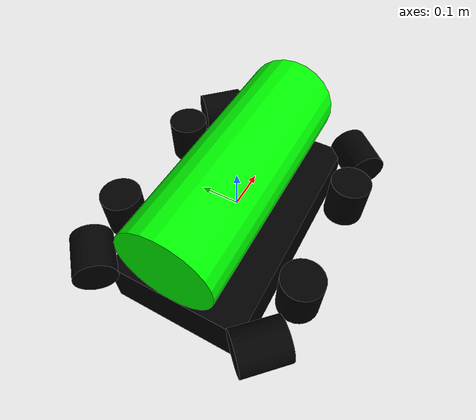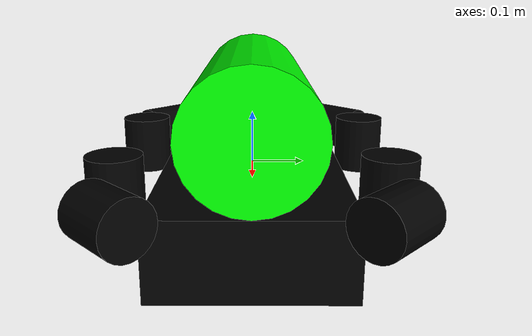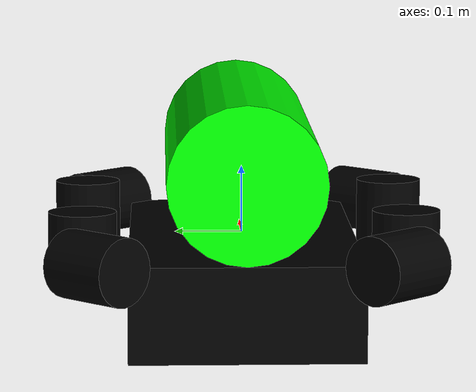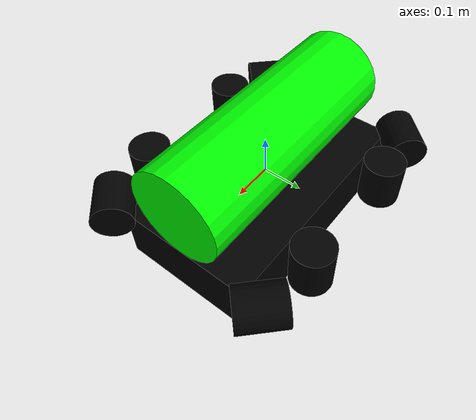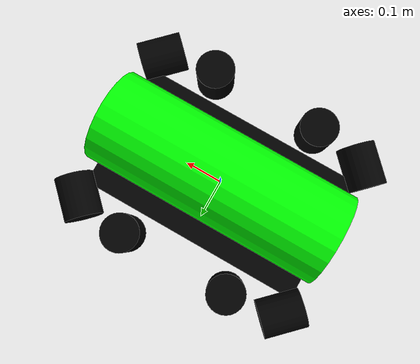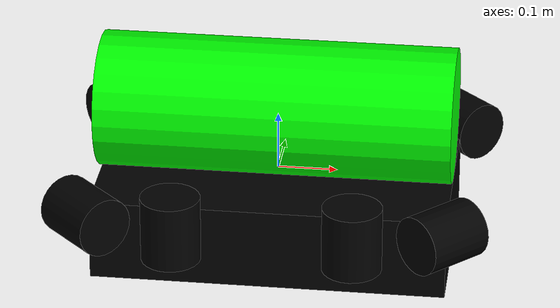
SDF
<?xml version="1.0"?>
<sdf version="1.8">
  <model name="orca_auv">

    <link name="main_body">

      <inertial>
        <mass>20</mass>
        <inertia>
          <ixx>0.2</ixx>
          <ixy>0</ixy>
          <ixz>0</ixz>
          <iyy>0.5</iyy>
          <iyz>0</iyz>
          <izz>0.5</izz>
        </inertia>
      </inertial>

      <collision name="main_body_buoyancy">

        <pose>0 0 0.115 0 0 0</pose>

        <geometry>
          <box>
            <size>0.6 0.200 0.200</size>
          </box>
        </geometry>

      </collision>

      <visual name="main_hull_visual">

        <pose>0 0 0.115 0 1.5707963268 0</pose>

        <geometry>
          <cylinder>
            <radius>0.115</radius>
            <length>0.6</length>
          </cylinder>
        </geometry>

        <material>
          <ambient>0.0 1.0 0.0 1.0</ambient>
          <diffuse>0.0 1.0 0.0 1.0</diffuse>
          <specular>0.25 0.25 0.25 1.0</specular>
        </material>

      </visual>

      <visual name="main_frame_visual">

        <pose>0 0 -0.070 0 0 0</pose>

        <geometry>
          <box>
            <size>0.6 0.340 0.140</size>
          </box>
        </geometry>

        <material>
          <ambient>0.0 0.0 0.0 1.0</ambient>
          <diffuse>0.0 0.0 0.0 1.0</diffuse>
          <specular>0.25 0.25 0.25 1.0</specular>
        </material>

      </visual>

      <sensor name="d435i_rgbd" type="rgbd_camera">
        <pose>0.3 0 0.115 0 0 0</pose>
        <topic>orca_auv/realsense</topic>
        <camera>
          <horizontal_fov>1.211</horizontal_fov>
          <image>
            <width>640</width>
            <height>480</height>
            <format>R8G8B8</format>
          </image>
          <depth_camera>
            <output>depths</output>
          </depth_camera>
          <clip>
            <near>0.1</near>
            <far>20</far>
          </clip>
        </camera>
        <always_on>1</always_on>
        <update_rate>30</update_rate>
        <visualize>true</visualize>
      </sensor>

      <!-- Bottom-side camera sensor -->
      <sensor name="bottom_camera" type="camera">
        <pose>0 0 -0.123 0 1.57 0</pose>
        <topic>/orca_auv/camera/bottom/image_raw</topic>
        <camera_info_topic>/orca_auv/camera/bottom/camera_info</camera_info_topic>
        <camera>
          <horizontal_fov>1.047</horizontal_fov>
          <image>
            <width>160</width>
            <height>120</height>
            <format>R8G8B8</format>
          </image>
          <clip>
            <near>0.1</near>
            <far>20</far>
          </clip>
        </camera>
        <always_on>1</always_on>
        <update_rate>15</update_rate>
        <visualize>true</visualize>
      </sensor>

      <sensor name="orca_auv_imu_sensor" type="imu">
        <always_on>true</always_on>
        <update_rate>100</update_rate>
        <visualize>true</visualize>
        <topic>/orca_auv/sensors/imu</topic>
        <pose>0 0 0 3.1415926536 0 0</pose>

        <plugin filename="libignition-gazebo-imu-system.so"
                name="ignition::gazebo::systems::Imu">
        </plugin>
      </sensor>

      <sensor name="orca_auv_altimeter" type="altimeter">
        <always_on>true</always_on>
        <update_rate>100</update_rate>
        <visualize>true</visualize>
        <topic>/orca_auv/sensors/altimeter</topic>
        <pose>0 0.115 0 0 0 1.5707963268</pose>

        <plugin filename="libignition-gazebo-altimeter-system.so"
          name="ignition::gazebo::systems::Altimeter" />

        <altimeter>
          <vertical_position>
            <noise type="gaussian"></noise>
          </vertical_position>
        </altimeter>
      </sensor>

    </link>

    <plugin
      filename="ignition-gazebo-hydrodynamics-system"
      name="ignition::gazebo::systems::Hydrodynamics">
      <link_name>main_body</link_name>

      <xDotU>-1</xDotU>
      <yDotV>-1</yDotV>
      <zDotW>-1</zDotW>

      <kDotP>-0.1</kDotP>
      <mDotQ>-0.1</mDotQ>
      <nDotR>-0.1</nDotR>

      <xUabsU>-1</xUabsU>
      <yVabsV>-1</yVabsV>
      <zWabsW>-1</zWabsW>

      <kPabsP>-1</kPabsP>
      <mQabsQ>-1</mQabsQ>
      <nRabsR>-1</nRabsR>

      <xU>-30</xU>
      <yV>-30</yV>
      <zW>-30</zW>

      <kP>-1</kP>
      <mQ>-1</mQ>
      <nR>-1</nR>
    </plugin>

    <!-- thruster_0 begin -->

    <link name="thruster_0">

      <pose relative_to="main_body">0.150 0.237 0 0 1.5707963268 0</pose>

      <inertial>
        <mass>0.427</mass>
        <inertia>
          <ixx>0.0006</ixx>
          <ixy>0</ixy>
          <ixz>0</ixz>
          <iyy>0.0003</iyy>
          <iyz>0</iyz>
          <izz>0.0003</izz>
        </inertia>
      </inertial>

      <visual name="thruster_0_visual">
        <pose>0 0 0 0 1.5707963268 0</pose>

        <geometry>
          <cylinder>
            <radius>0.050</radius>
            <length>0.113</length>
          </cylinder>
        </geometry>

        <material>
          <ambient>0.0 0.0 0.0 1.0</ambient>
          <diffuse>0.0 0.0 0.0 1.0</diffuse>
          <specular>0.25 0.25 0.25 1.0</specular>
        </material>
      </visual>

    </link>

    <joint name="thruster_0_joint" type="revolute">
      <parent>main_body</parent>
      <child>thruster_0</child>

      <axis>
        <xyz>1 0 0</xyz>
      </axis>
    </joint>

    <plugin
      filename="ignition-gazebo-thruster-system"
      name="ignition::gazebo::systems::Thruster">
      <namespace>orca_auv</namespace>
      <topic>thrusters/thruster_0/force_N</topic>

      <joint_name>thruster_0_joint</joint_name>

      <fluid_density>1000</fluid_density>
      <propeller_diameter>0.076</propeller_diameter>
      <thrust_coefficient>1.0</thrust_coefficient>
    </plugin>

    <!-- thruster_0 end -->

    <!-- thruster_1 begin -->

    <link name="thruster_1">

      <pose relative_to="main_body">0.150 -0.237 0 0 1.5707963268 0</pose>

      <inertial>
        <mass>0.427</mass>
        <inertia>
          <ixx>0.0006</ixx>
          <ixy>0</ixy>
          <ixz>0</ixz>
          <iyy>0.0003</iyy>
          <iyz>0</iyz>
          <izz>0.0003</izz>
        </inertia>
      </inertial>

      <visual name="thruster_1_visual">
        <pose>0 0 0 0 1.5707963268 0</pose>

        <geometry>
          <cylinder>
            <radius>0.050</radius>
            <length>0.113</length>
          </cylinder>
        </geometry>

        <material>
          <ambient>0.0 0.0 0.0 1.0</ambient>
          <diffuse>0.0 0.0 0.0 1.0</diffuse>
          <specular>0.25 0.25 0.25 1.0</specular>
        </material>
      </visual>

    </link>

    <joint name="thruster_1_joint" type="revolute">
      <parent>main_body</parent>
      <child>thruster_1</child>

      <axis>
        <xyz>1 0 0</xyz>
      </axis>
    </joint>

    <plugin
      filename="ignition-gazebo-thruster-system"
      name="ignition::gazebo::systems::Thruster">
      <namespace>orca_auv</namespace>
      <topic>thrusters/thruster_1/force_N</topic>

      <joint_name>thruster_1_joint</joint_name>

      <fluid_density>1000</fluid_density>
      <propeller_diameter>0.076</propeller_diameter>
      <thrust_coefficient>1.0</thrust_coefficient>
    </plugin>

    <!-- thruster_1 end -->

    <!-- thruster_2 begin -->

    <link name="thruster_2">

      <pose relative_to="main_body">-0.150 0.237 0 0 1.5707963268 0</pose>

      <inertial>
        <mass>0.427</mass>
        <inertia>
          <ixx>0.0006</ixx>
          <ixy>0</ixy>
          <ixz>0</ixz>
          <iyy>0.0003</iyy>
          <iyz>0</iyz>
          <izz>0.0003</izz>
        </inertia>
      </inertial>

      <visual name="thruster_2_visual">
        <pose>0 0 0 0 1.5707963268 0</pose>

        <geometry>
          <cylinder>
            <radius>0.050</radius>
            <length>0.113</length>
          </cylinder>
        </geometry>

        <material>
          <ambient>0.0 0.0 0.0 1.0</ambient>
          <diffuse>0.0 0.0 0.0 1.0</diffuse>
          <specular>0.25 0.25 0.25 1.0</specular>
        </material>
      </visual>

    </link>

    <joint name="thruster_2_joint" type="revolute">
      <parent>main_body</parent>
      <child>thruster_2</child>

      <axis>
        <xyz>1 0 0</xyz>
      </axis>
    </joint>

    <plugin
      filename="ignition-gazebo-thruster-system"
      name="ignition::gazebo::systems::Thruster">
      <namespace>orca_auv</namespace>
      <topic>thrusters/thruster_2/force_N</topic>

      <joint_name>thruster_2_joint</joint_name>

      <fluid_density>1000</fluid_density>
      <propeller_diameter>0.076</propeller_diameter>
      <thrust_coefficient>1.0</thrust_coefficient>
    </plugin>

    <!-- thruster_2 end -->

    <!-- thruster_3 begin -->

    <link name="thruster_3">

      <pose relative_to="main_body">-0.150 -0.237 0 0 1.5707963268 0</pose>

      <inertial>
        <mass>0.427</mass>
        <inertia>
          <ixx>0.0006</ixx>
          <ixy>0</ixy>
          <ixz>0</ixz>
          <iyy>0.0003</iyy>
          <iyz>0</iyz>
          <izz>0.0003</izz>
        </inertia>
      </inertial>

      <visual name="thruster_3_visual">
        <pose>0 0 0 0 1.5707963268 0</pose>

        <geometry>
          <cylinder>
            <radius>0.050</radius>
            <length>0.113</length>
          </cylinder>
        </geometry>

        <material>
          <ambient>0.0 0.0 0.0 1.0</ambient>
          <diffuse>0.0 0.0 0.0 1.0</diffuse>
          <specular>0.25 0.25 0.25 1.0</specular>
        </material>
      </visual>

    </link>

    <joint name="thruster_3_joint" type="revolute">
      <parent>main_body</parent>
      <child>thruster_3</child>

      <axis>
        <xyz>1 0 0</xyz>
      </axis>
    </joint>

    <plugin
      filename="ignition-gazebo-thruster-system"
      name="ignition::gazebo::systems::Thruster">
      <namespace>orca_auv</namespace>
      <topic>thrusters/thruster_3/force_N</topic>

      <joint_name>thruster_3_joint</joint_name>

      <fluid_density>1000</fluid_density>
      <propeller_diameter>0.076</propeller_diameter>
      <thrust_coefficient>1.0</thrust_coefficient>
    </plugin>

    <!-- thruster_3 end -->

    <!-- thruster_4 begin -->

    <link name="thruster_4">

      <pose relative_to="main_body">0.29651 0.213 0 0 0 -0.7853981634</pose>

      <inertial>
        <mass>0.427</mass>
        <inertia>
          <ixx>0.0006</ixx>
          <ixy>0</ixy>
          <ixz>0</ixz>
          <iyy>0.0003</iyy>
          <iyz>0</iyz>
          <izz>0.0003</izz>
        </inertia>
      </inertial>

      <visual name="thruster_4_visual">
        <pose>0 0 0 0 1.5707963268 0</pose>

        <geometry>
          <cylinder>
            <radius>0.050</radius>
            <length>0.113</length>
          </cylinder>
        </geometry>

        <material>
          <ambient>0.0 0.0 0.0 1.0</ambient>
          <diffuse>0.0 0.0 0.0 1.0</diffuse>
          <specular>0.25 0.25 0.25 1.0</specular>
        </material>
      </visual>

    </link>

    <joint name="thruster_4_joint" type="revolute">
      <parent>main_body</parent>
      <child>thruster_4</child>

      <axis>
        <xyz>1 0 0</xyz>
      </axis>
    </joint>

    <plugin
      filename="ignition-gazebo-thruster-system"
      name="ignition::gazebo::systems::Thruster">
      <namespace>orca_auv</namespace>
      <topic>thrusters/thruster_4/force_N</topic>

      <joint_name>thruster_4_joint</joint_name>

      <fluid_density>1000</fluid_density>
      <propeller_diameter>0.076</propeller_diameter>
      <thrust_coefficient>1.0</thrust_coefficient>
    </plugin>

    <!-- thruster_4 end -->

    <!-- thruster_5 begin -->

    <link name="thruster_5">

      <pose relative_to="main_body">0.29651 -0.213 0 0 0 0.7853981634</pose>

      <inertial>
        <mass>0.427</mass>
        <inertia>
          <ixx>0.0006</ixx>
          <ixy>0</ixy>
          <ixz>0</ixz>
          <iyy>0.0003</iyy>
          <iyz>0</iyz>
          <izz>0.0003</izz>
        </inertia>
      </inertial>

      <visual name="thruster_5_visual">
        <pose>0 0 0 0 1.5707963268 0</pose>

        <geometry>
          <cylinder>
            <radius>0.050</radius>
            <length>0.113</length>
          </cylinder>
        </geometry>

        <material>
          <ambient>0.0 0.0 0.0 1.0</ambient>
          <diffuse>0.0 0.0 0.0 1.0</diffuse>
          <specular>0.25 0.25 0.25 1.0</specular>
        </material>
      </visual>

    </link>

    <joint name="thruster_5_joint" type="revolute">
      <parent>main_body</parent>
      <child>thruster_5</child>

      <axis>
        <xyz>1 0 0</xyz>
      </axis>
    </joint>

    <plugin
      filename="ignition-gazebo-thruster-system"
      name="ignition::gazebo::systems::Thruster">
      <namespace>orca_auv</namespace>
      <topic>thrusters/thruster_5/force_N</topic>

      <joint_name>thruster_5_joint</joint_name>

      <fluid_density>1000</fluid_density>
      <propeller_diameter>0.076</propeller_diameter>
      <thrust_coefficient>1.0</thrust_coefficient>
    </plugin>

    <!-- thruster_5 end -->

    <!-- thruster_6 begin -->

    <link name="thruster_6">

      <pose relative_to="main_body">-0.29651 0.213 0 0 0 0.7853981634</pose>

      <inertial>
        <mass>0.427</mass>
        <inertia>
          <ixx>0.0006</ixx>
          <ixy>0</ixy>
          <ixz>0</ixz>
          <iyy>0.0003</iyy>
          <iyz>0</iyz>
          <izz>0.0003</izz>
        </inertia>
      </inertial>

      <visual name="thruster_6_visual">
        <pose>0 0 0 0 1.5707963268 0</pose>

        <geometry>
          <cylinder>
            <radius>0.050</radius>
            <length>0.113</length>
          </cylinder>
        </geometry>

        <material>
          <ambient>0.0 0.0 0.0 1.0</ambient>
          <diffuse>0.0 0.0 0.0 1.0</diffuse>
          <specular>0.25 0.25 0.25 1.0</specular>
        </material>
      </visual>

    </link>

    <joint name="thruster_6_joint" type="revolute">
      <parent>main_body</parent>
      <child>thruster_6</child>

      <axis>
        <xyz>1 0 0</xyz>
      </axis>
    </joint>

    <plugin
      filename="ignition-gazebo-thruster-system"
      name="ignition::gazebo::systems::Thruster">
      <namespace>orca_auv</namespace>
      <topic>thrusters/thruster_6/force_N</topic>

      <joint_name>thruster_6_joint</joint_name>

      <fluid_density>1000</fluid_density>
      <propeller_diameter>0.076</propeller_diameter>
      <thrust_coefficient>1.0</thrust_coefficient>
    </plugin>

    <!-- thruster_6 end -->

    <!-- thruster_7 begin -->

    <link name="thruster_7">

      <pose relative_to="main_body">-0.29651 -0.213 0 0 0 -0.7853981634</pose>

      <inertial>
        <mass>0.427</mass>
        <inertia>
          <ixx>0.0006</ixx>
          <ixy>0</ixy>
          <ixz>0</ixz>
          <iyy>0.0003</iyy>
          <iyz>0</iyz>
          <izz>0.0003</izz>
        </inertia>
      </inertial>

      <visual name="thruster_7_visual">
        <pose>0 0 0 0 1.5707963268 0</pose>

        <geometry>
          <cylinder>
            <radius>0.050</radius>
            <length>0.113</length>
          </cylinder>
        </geometry>

        <material>
          <ambient>0.0 0.0 0.0 1.0</ambient>
          <diffuse>0.0 0.0 0.0 1.0</diffuse>
          <specular>0.25 0.25 0.25 1.0</specular>
        </material>
      </visual>

    </link>

    <joint name="thruster_7_joint" type="revolute">
      <parent>main_body</parent>
      <child>thruster_7</child>

      <axis>
        <xyz>1 0 0</xyz>
      </axis>
    </joint>

    <plugin
      filename="ignition-gazebo-thruster-system"
      name="ignition::gazebo::systems::Thruster">
      <namespace>orca_auv</namespace>
      <topic>thrusters/thruster_7/force_N</topic>

      <joint_name>thruster_7_joint</joint_name>

      <fluid_density>1000</fluid_density>
      <propeller_diameter>0.076</propeller_diameter>
      <thrust_coefficient>1.0</thrust_coefficient>
    </plugin>

    <!-- thruster_7 end -->

  </model>
</sdf>
